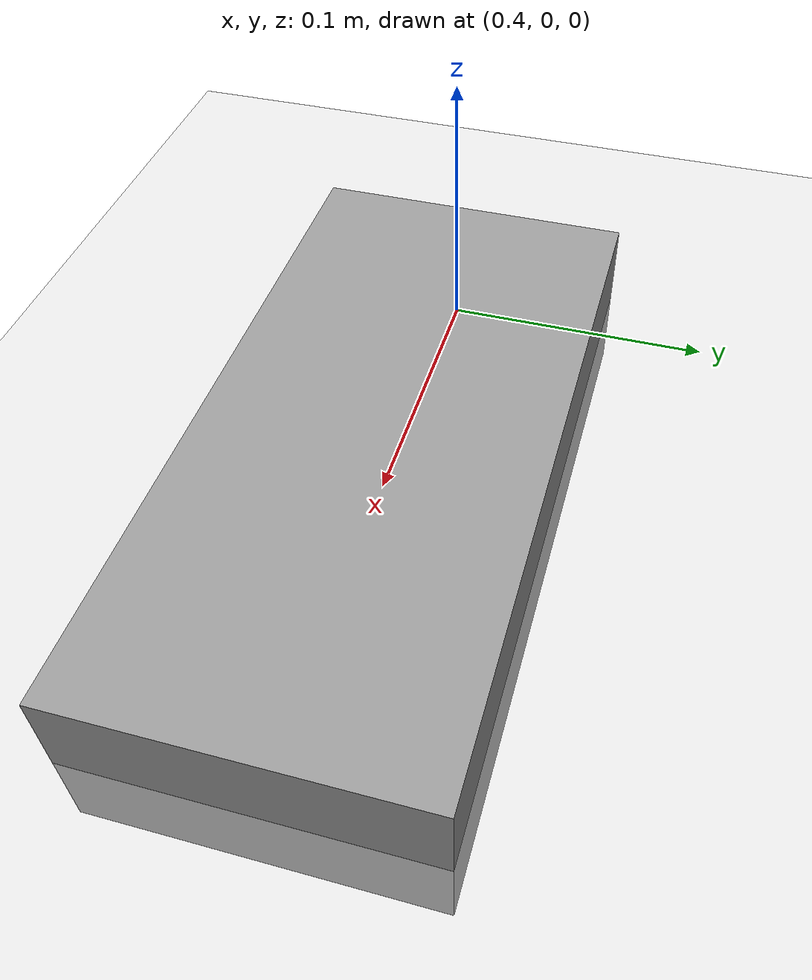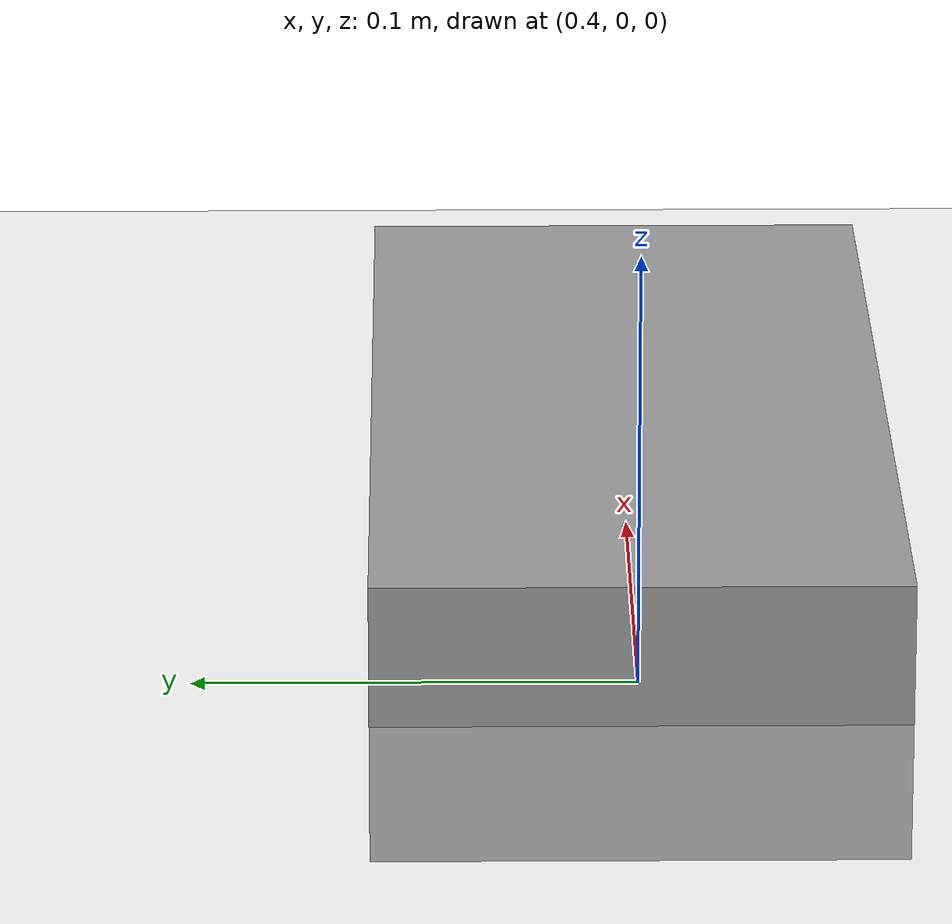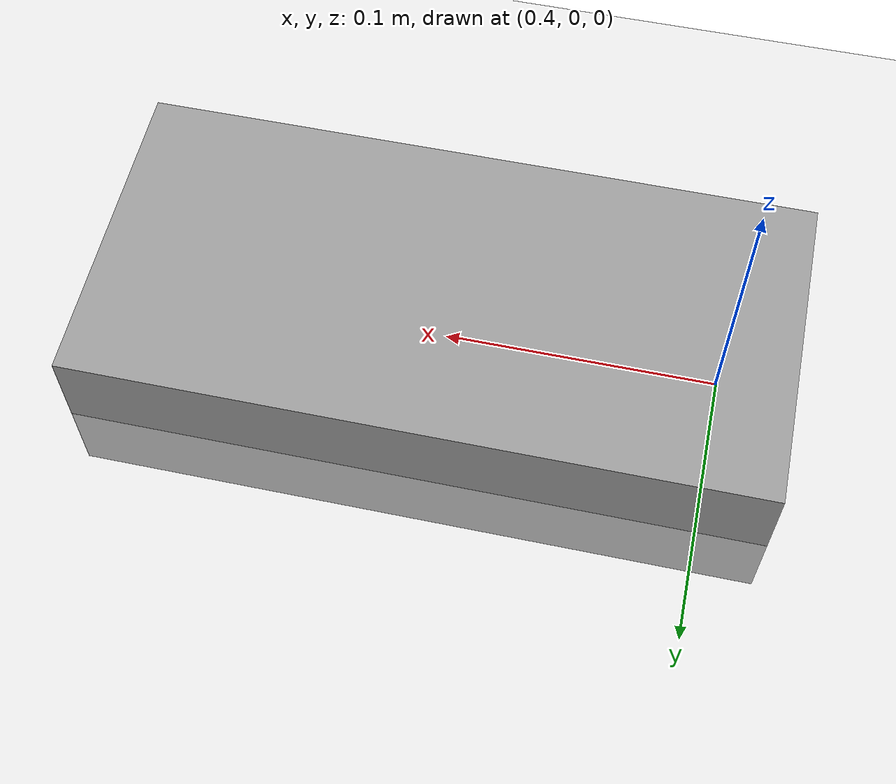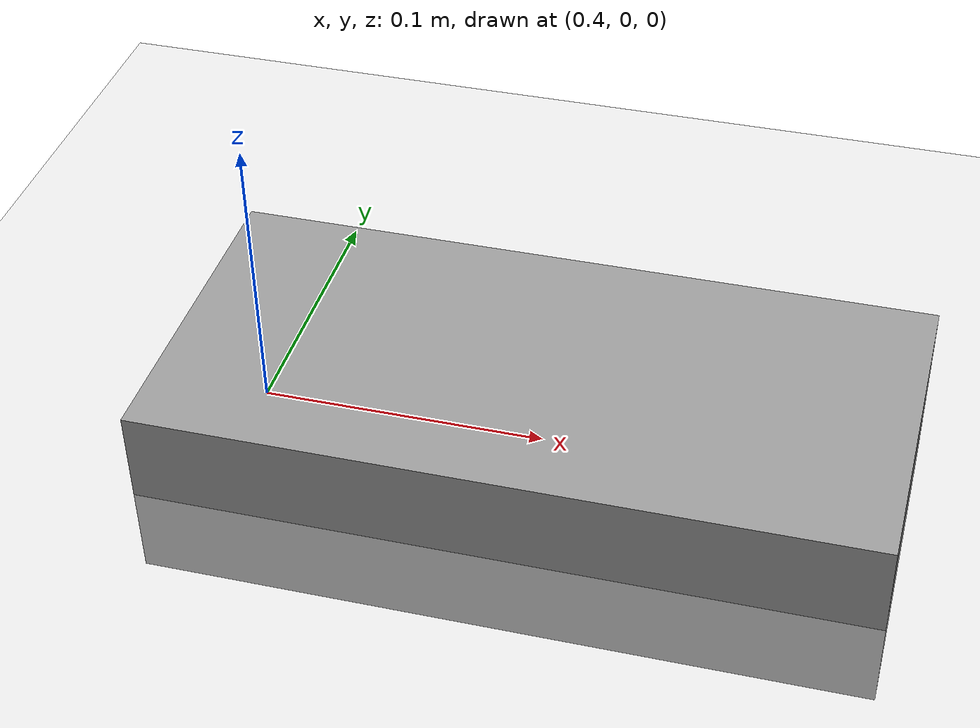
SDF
<?xml version="1.0" ?>
<sdf version="1.5">
<world name="default">

    <include>
        <uri>model://sun</uri>
    </include>

    <gravity>0 0 -9.81</gravity>
    <include>
        <uri>model://ground_plane</uri>
    </include>

    <!-- Terrain model -->
    <model name="brick">
      <include>
        <uri>model://normal_brick</uri>
        <pose> 0.5 0 0 0 0 0</pose>
        <static>1</static>
      </include>
    </model>

    <physics name="default_physics" default="true" type="ode">
      <max_step_size>0.001</max_step_size>
      <real_time_factor>1</real_time_factor>
      <real_time_update_rate>1000</real_time_update_rate>
      <ode>
        <constraints>
          <cfm>0</cfm>
          <erp>0.2</erp>
        </constraints>
        <solver>
          <type>quick</type>
          <iters>100</iters>
          <sor>0.5</sor>
          <friction_model>cone_model</friction_model>
        </solver>
      </ode>
    </physics>

</world>
</sdf>

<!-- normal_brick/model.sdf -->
<sdf version='1.7'>
  <model name='normal_brick'>
    <link name='link_0'>
      <inertial>
        <mass>4.66171</mass>
        <inertia>
          <ixx>0.00860241</ixx>
          <ixy>0</ixy>
          <ixz>0</ixz>
          <iyy>0.0272881</iyy>
          <iyz>0</iyz>
          <izz>0.0298738</izz>
        </inertia>
        <pose>0 0 0 0 -0 0</pose>
      </inertial>
      <pose>0 0 0 0 -0 0</pose>
      <gravity>1</gravity>
      <self_collide>0</self_collide>
      <kinematic>0</kinematic>
      <enable_wind>0</enable_wind>
      <visual name='visual'>
        <pose>0 0 0 0 -0 0</pose>
        <geometry>
          <box>
            <size>0.25 0.12 0.065</size>
          </box>
        </geometry>
        <material>
          <lighting>1</lighting>
          <script>
            <uri>file://media/materials/scripts/gazebo.material</uri>
            <name>Gazebo/Grey</name>
          </script>
          <shader type='pixel'>
            <normal_map>__default__</normal_map>
          </shader>
          <ambient>0.3 0.3 0.3 1</ambient>
          <diffuse>0.7 0.7 0.7 1</diffuse>
          <specular>0.01 0.01 0.01 1</specular>
          <emissive>0 0 0 1</emissive>
        </material>
        <transparency>0</transparency>
        <cast_shadows>1</cast_shadows>
      </visual>
      <collision name='collision'>
        <laser_retro>0</laser_retro>
        <max_contacts>10</max_contacts>
        <pose>0 0 0 0 0 0</pose>
        <geometry>
          <box>
            <size>0.25 0.12 0.065</size>
          </box>
        </geometry>
        <surface>
          <friction>
            <ode>
              <mu>1</mu>
              <mu2>1</mu2>
              <fdir1>0 0 0</fdir1>
              <slip1>0</slip1>
              <slip2>0</slip2>
            </ode>
            <torsional>
              <coefficient>1</coefficient>
              <patch_radius>0</patch_radius>
              <surface_radius>0</surface_radius>
              <use_patch_radius>1</use_patch_radius>
              <ode>
                <slip>0</slip>
              </ode>
            </torsional>
          </friction>
          <bounce>
            <restitution_coefficient>0</restitution_coefficient>
            <threshold>1e+06</threshold>
          </bounce>
          <contact>
            <collide_without_contact>0</collide_without_contact>
            <collide_without_contact_bitmask>1</collide_without_contact_bitmask>
            <collide_bitmask>1</collide_bitmask>
            <ode>
              <soft_cfm>0</soft_cfm>
              <soft_erp>0.2</soft_erp>
              <kp>1e+13</kp>
              <kd>1</kd>
              <max_vel>0.01</max_vel>
              <min_depth>0</min_depth>
            </ode>
            <bullet>
              <split_impulse>1</split_impulse>
              <split_impulse_penetration_threshold>-0.01</split_impulse_penetration_threshold>
              <soft_cfm>0</soft_cfm>
              <soft_erp>0.2</soft_erp>
              <kp>1e+13</kp>
              <kd>1</kd>
            </bullet>
          </contact>
        </surface>
      </collision>
    </link>
    <static>0</static>
    <allow_auto_disable>1</allow_auto_disable>
  </model>
</sdf>
